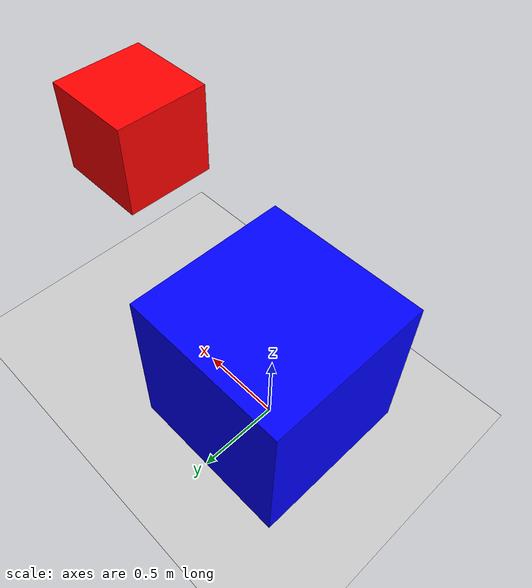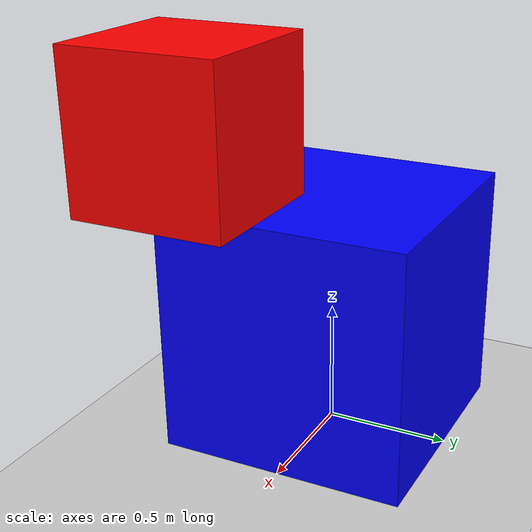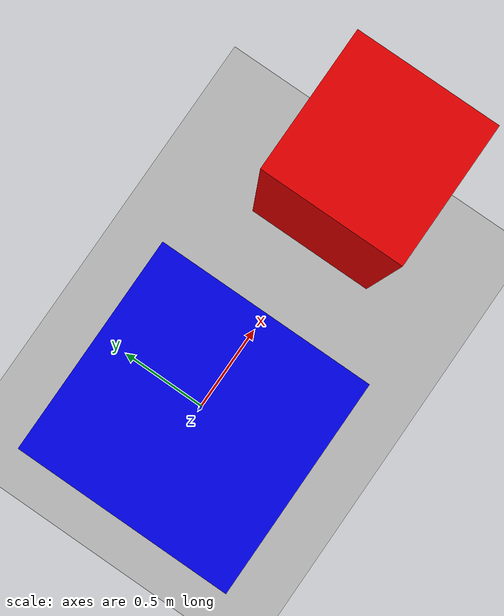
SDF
<?xml version="1.0" ?>
<sdf version="1.8">
    <world name="mvp_detachable_world">
        <physics name="1ms" type="ode">
            <max_step_size>0.001</max_step_size>
            <real_time_factor>1.0</real_time_factor>
        </physics>

        <plugin filename="gz-sim-physics-system" name="gz::sim::systems::Physics"/>
        <plugin filename="gz-sim-user-commands-system" name="gz::sim::systems::UserCommands"/>
        <plugin filename="gz-sim-scene-broadcaster-system" name="gz::sim::systems::SceneBroadcaster"/>

        <light type="directional" name="sun">
            <cast_shadows>true</cast_shadows>
            <pose>0 0 10 0 0 0</pose>
            <diffuse>1 1 1 1</diffuse>
            <direction>-0.5 0.1 -0.9</direction>
        </light>

        <model name="parent_cube">
            <pose>0 0 0.5 0 0 0</pose>
            <link name="link">
                <inertial>
                    <mass>1.0</mass>
                    <inertia>
                        <ixx>0.1</ixx><iyy>0.1</iyy><izz>0.1</izz>
                    </inertia>
                </inertial>
                <collision name="collision">
                    <geometry><box><size>1 1 1</size></box></geometry>
                </collision>
                <visual name="visual">
                    <geometry><box><size>1 1 1</size></box></geometry>
                    <material><ambient>0 0 1 1</ambient><diffuse>0 0 1 1</diffuse></material>
                </visual>
            </link>

            <plugin filename="gz-sim-linearbatteryplugin-system" name="gz::sim::systems::LinearBatteryPlugin"/>
            <plugin filename="gz-sim-velocity-control-system" name="gz::sim::systems::VelocityControl"/>

            <plugin filename="gz-sim-detachable-joint-system" name="gz::sim::systems::DetachableJoint">
                <parent_link>link</parent_link>
                <child_model>child_cube</child_model>
                <child_link>link</child_link>
                <attach_topic>/mvp/attach</attach_topic>
                <detach_topic>/mvp/detach</detach_topic>
            </plugin>
        </model>

        <model name="child_cube">
            <pose>1 0 1.5 0 0 0</pose> <link name="link">
                <inertial>
                    <mass>0.5</mass>
                    <inertia>
                        <ixx>0.05</ixx><iyy>0.05</iyy><izz>0.05</izz>
                    </inertia>
                </inertial>
                <collision name="collision">
                    <geometry><box><size>0.5 0.5 0.5</size></box></geometry>
                </collision>
                <visual name="visual">
                    <geometry><box><size>0.5 0.5 0.5</size></box></geometry>
                    <material><ambient>1 0 0 1</ambient><diffuse>1 0 0 1</diffuse></material>
                </visual>
            </link>
        </model>

          <!-- Ground -->
    <include>
      <uri>https://fuel.gazebosim.org/1.0/OpenRobotics/models/Ground Plane</uri>

    </include>
    </world>
</sdf>
